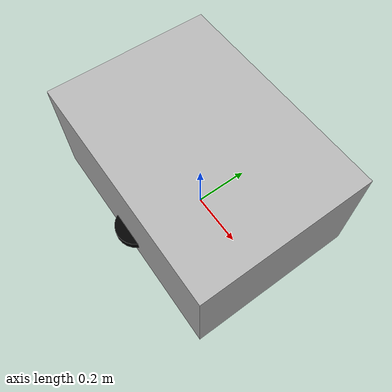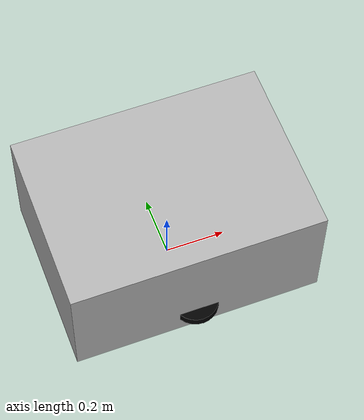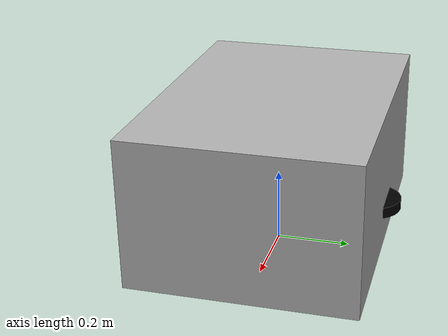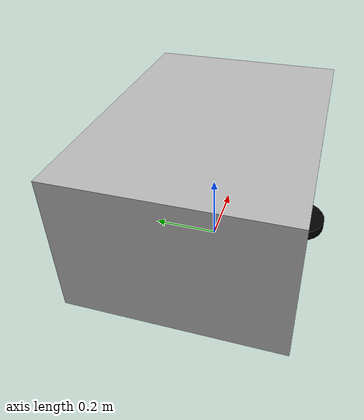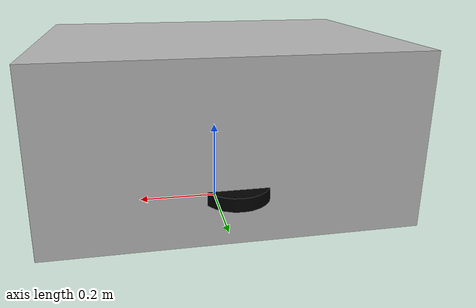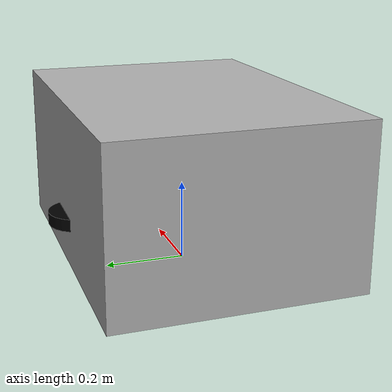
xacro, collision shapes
<?xml version="1.0"?>
<!-- Materials -->
<robot xmlns:xacro="http://www.ros.org/wiki/xacro" name="mp_500">

	<material name="Neobotix/Black">
        <color rgba="0.0 0.0 0.0 1.0"/>
    </material>

    <material name="Neobotix/Blue">
        <color rgba="0.0 0.0 0.8 1.0"/>
    </material>

    <material name="Neobotix/Green">
        <color rgba="0.0 0.8 0.0 1.0"/>
    </material>

    <material name="Neobotix/Grey">
        <color rgba="0.7 0.7 0.7 1.0"/>
    </material>

    <material name="Neobotix/Grey2">
        <color rgba="0.9 0.9 0.9 1.0"/>
    </material>

    <material name="Neobotix/Red">
        <color rgba="0.8 0.0 0.0 1.0"/>
    </material>

    <material name="Neobotix/White">
        <color rgba="1.0 1.0 1.0 1.0"/>
    </material>

    <material name="Neobotix/Yellow">
        <color rgba="1.0 1.0 0 10" />
    </material>

<!--++++++++++++++++++++++++++++++base_link++++++++++++++++++++++++++++++++++++++++++++++++++++-->
<!--0.5 8.5  median 4.5++++++++++++++++++++body++++++++++++++++++++++++++++-->
	<link name="base_link">
	  <inertial>
		  <mass value="5.67" />
		    <origin xyz="-0.20 0 0.0" rpy="0 0 0"/>
		    <inertia ixx="0.07" ixy="0.0" ixz="0.0"
		             iyy="0.08" iyz="0.0"
		             izz="0.1" />
	  </inertial>
      <visual name='body'>
        <origin xyz="0.0 0.0 0.08" rpy="0 0 1.57" /><!-- for STL -->
        <geometry>
            <mesh filename="package://mp500_description/meshes/MP500-BODY.STL" scale="0.01 0.01 0.01"/>
        </geometry>
        <material name="Neobotix/Grey" />
      </visual>
      <collision name='body_collision'>
        <origin xyz="0.0 0.0 0.234" rpy="0 0 0" />
        <geometry>
          <box size="0.830 0.600 0.400"/>
         </geometry>
      </collision>
<!--+++++++++++++++++++castor_front++++++++++++++++++++++++-->
	<visual name='castor_front_visual'>
          <origin xyz="-0.32 0 0.018" rpy="0 0 0" />
          <geometry>
            <sphere radius="0.016"/>
          </geometry>
          <material name="Neobotix/Black" />
      </visual>
      <collision name='castor_front_collision'>
	  	<origin xyz="-0.32 0 0.018 " rpy="0 0 0" />
          <geometry>
            <sphere radius="0.016"/>
          </geometry>
    </collision>
<!--+++++++++++++++++++castor_back++++++++++++++++++++++++-->
	<visual name='castor_back_visual'>
          <origin xyz="0.2 0 0.018" rpy="0 0 0" />
          <geometry>
            <sphere radius="0.016"/>
          </geometry>
          <material name="Neobotix/Black" />
      </visual>
      <collision name='castor_back_collision'>
	  	<origin xyz="0.2 0 0.018 " rpy="0 0 0" />
               <geometry>
            <sphere radius="0.016"/>
          </geometry>
       </collision>
    </link>

<!--+++++++++++++++++++wheel_left_link++++++++++++++++++++++++-->
<link name="wheel_left_link" type="wheel">
    <inertial>
      <mass value="1.5" />
      <origin xyz="0.0 0.0 -0.016" rpy="0 0 0" />
      <inertia ixx="0.0051" ixy="0" ixz="0" iyy="0.0051" iyz="0" izz="0.009" />
    </inertial>

    <visual>
     	<origin xyz="0.0 0.0 -0.016" rpy="0 0 1.57" />
     	<geometry>
	   <mesh filename="package://mp500_description/meshes/MP500-WHEEL.STL" scale="0.01 0.01 0.01"/>
     	</geometry>
     	<material name="Neobotix/Black" />
    </visual>

    <collision>
     	<origin xyz="0.0 0.0 -0.016" rpy="0 0 0" />
     	<geometry>
        	<cylinder radius="0.075" length="0.03"/>
     	</geometry>
    </collision>
</link>

<!--+++++++++++++++++++wheel_left_joint++++++++++++++++++++++++-->
	<joint name="wheel_left_joint" type="revolute">
		<origin xyz="0 -0.2645 0.127" rpy="0 0 0" />
    	<axis xyz="0 1 0"/>
    	<limit effort="1000.0" lower="-1e+16" upper="1e+16" velocity="3.5"/>
    	<joint_properties damping="0.0" friction="0.0" />
    	<parent link="base_link" />
    	<child link="wheel_left_link" />
    </joint>

	<!--+++++++++++++++++++wheel_right_link++++++++++++++++++++++++-->
	<link name="wheel_right_link" type="wheel">
		<inertial>
		  <mass value="1.5" />
		  <origin xyz="0 0.0 0.016" rpy="0 0 0" />
		  <inertia ixx="0.0051" ixy="0" ixz="0" iyy="0.0051" iyz="0" izz="0.009" />
		</inertial>

		<visual>
		 	<origin xyz="0 0.0 0.016" rpy="0 0 1.57" />
		 	<geometry>
			    <mesh filename="package://mp500_description/meshes/MP500-WHEEL.STL" scale="0.01 0.01 0.01"/>
		 	</geometry>
		 	<material name="Neobotix/Black" />
		</visual>

		<collision>
		 	<origin xyz="0.0 0.0 0.016" rpy="0 0 0" />
		 	<geometry>
		    	<cylinder radius="0.075" length="0.03"/>
		 	</geometry>
		</collision>
	</link>

	<!--+++++++++++++++++++wheel_right_joint++++++++++++++++++++++++-->
	<joint name="wheel_right_joint" type="revolute">
    	<origin xyz="0 0.2645 0.127" rpy="0 0 0" />
    	<axis xyz="0 1 0"/>
    	<limit effort="1000.0" lower="-1e+16" upper="1e+16" velocity="3.5"/>
    	<joint_properties damping="0.0" friction="0.0" />
    	<parent link="base_link" />
    	<child link="wheel_right_link" />
    </joint>

	<!--+++++++++++++++++++laserscanner_front_joint++++++++++++++++++++++++-->
	<joint name="laserscanner_front_joint" type="fixed">
		  <axis xyz="0 1 0" />
		  <origin xyz="0.244 0 0.141" rpy="3.14 0 0" />
		  <parent link="base_link"/>
		  <child link="laserscanner_front_link"/>
	</joint>

	<!--+++++++++++++++++++laserscanner_front_link++++++++++++++++++++++++-->
	<link name="laserscanner_front_link" type="laser">
		<inertial>
			<mass value="0.001" />
			<origin xyz="0 0 0.0" rpy="0 0 0" />
			<inertia ixx="0.0001" ixy="0" ixz="0" iyy="0.000001" iyz="0" izz="0.0001" />
	  	</inertial>
	  	<visual>
			<origin xyz="0 0 -0.04" rpy="0 0 -1.57" />
			<geometry>
		  		<mesh filename="package://neo_mp_500/robot_model/mp_500/meshes/SICK-S300.STL" />
			</geometry>
			<material name="Neobotix/Yellow" />
	  	</visual>
	  	<collision>
			<origin xyz="0 0 0" rpy="0 0 0" />
			<geometry>
		  	<cylinder length="0.154" radius="0.053" />
			</geometry>
	  	</collision>
	</link>

</robot>
